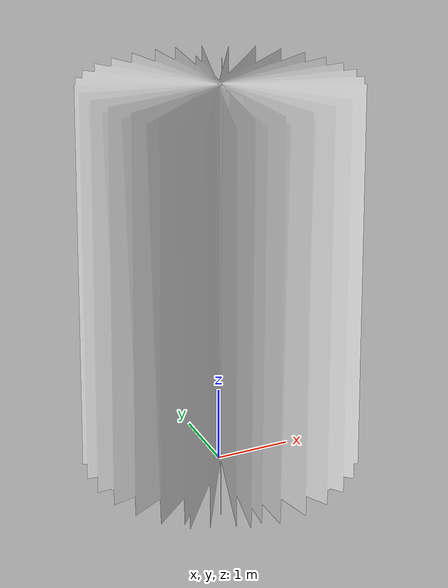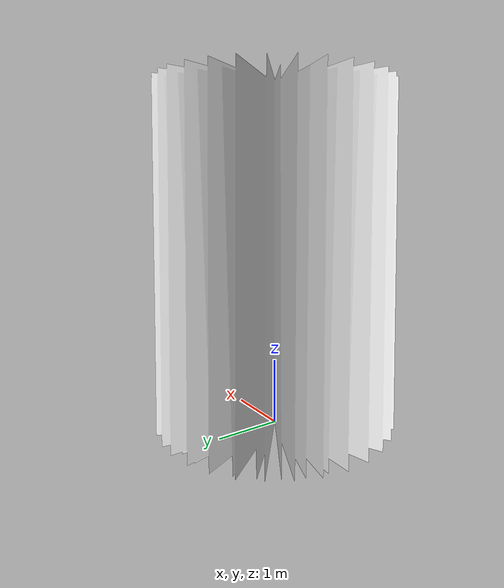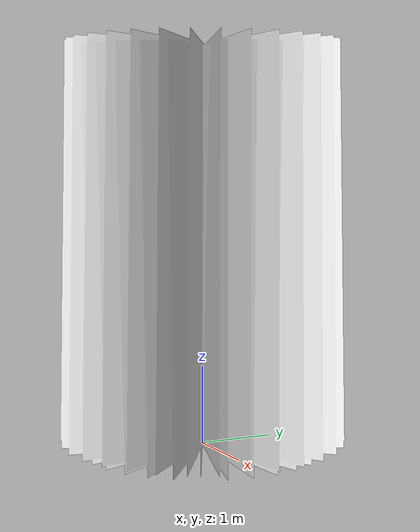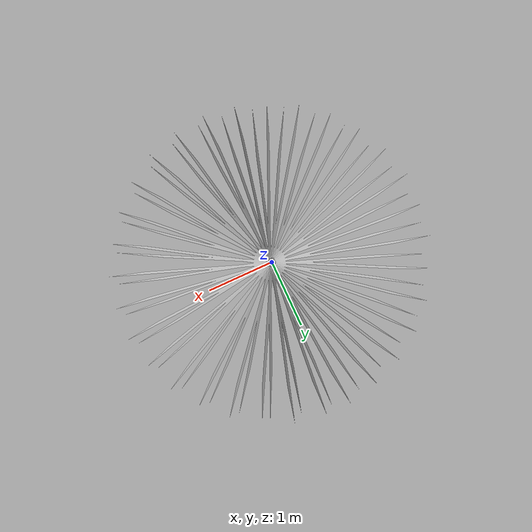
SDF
<?xml version='1.0'?>
<sdf version='1.6'>
  <model name='apple_tree'>
    <link name='link'>
      <self_collide>0</self_collide>
      <enable_wind>0</enable_wind>
      <kinematic>0</kinematic>
      <pose frame=''>0 0 0 0 -0 0</pose>
      <gravity>1</gravity>
      <inertial>
        <mass>1</mass>
        <pose frame=''>0 0 0 0 -0 0</pose>
        <inertia>
          <ixx>1</ixx>
          <ixy>0</ixy>
          <ixz>0</ixz>
          <iyy>1</iyy>
          <iyz>0</iyz>
          <izz>1</izz>
        </inertia>
      </inertial>
      <visual name='visual'>
        <geometry>
          <mesh>
            <uri>model://apple_tree/meshes/tree.dae</uri>
            <scale>1.7 1.7 1.7</scale>
          </mesh>
        </geometry>
        <transparency>1e-05</transparency>
        <material>
          <script>
            <uri>model://apple_tree/materials/scripts</uri>
            <uri>model://apple_tree/materials/textures</uri>
            <name>Apple_tree/Diffuse</name>
          </script>
          <shader type='pixel'>
            <normal_map>__default__</normal_map>
          </shader>
          <ambient>1 1 1 1</ambient>
          <diffuse>1 1 1 1</diffuse>
          <specular>0 0 0 1</specular>
          <emissive>0 0 0 1</emissive>
        </material>
        <pose frame=''>0 0 0 0 -0 0</pose>
        <cast_shadows>1</cast_shadows>
      </visual>
      <collision name='collision'>
        <laser_retro>0</laser_retro>
        <max_contacts>10</max_contacts>
        <pose frame=''>0 0 0 0 -0 0</pose>
        <geometry>
          <mesh>
            <uri>/home/tahsincan/hector_ws/src/hector_moveit/Media/models/apple_tree/meshes/tree.dae</uri>
            <scale>0.9 0.9 1.4</scale>
          </mesh>
        </geometry>
        <surface>
          <friction>
            <ode>
              <mu>1</mu>
              <mu2>1</mu2>
              <fdir1>0 0 0</fdir1>
              <slip1>0</slip1>
              <slip2>0</slip2>
            </ode>
            <torsional>
              <coefficient>1</coefficient>
              <patch_radius>0</patch_radius>
              <surface_radius>0</surface_radius>
              <use_patch_radius>1</use_patch_radius>
              <ode>
                <slip>0</slip>
              </ode>
            </torsional>
          </friction>
          <bounce>
            <restitution_coefficient>0</restitution_coefficient>
            <threshold>1e+06</threshold>
          </bounce>
          <contact>
            <collide_without_contact>0</collide_without_contact>
            <collide_without_contact_bitmask>1</collide_without_contact_bitmask>
            <collide_bitmask>1</collide_bitmask>
            <ode>
              <soft_cfm>0</soft_cfm>
              <soft_erp>0.2</soft_erp>
              <kp>1e+13</kp>
              <kd>1</kd>
              <max_vel>0.01</max_vel>
              <min_depth>0</min_depth>
            </ode>
            <bullet>
              <split_impulse>1</split_impulse>
              <split_impulse_penetration_threshold>-0.01</split_impulse_penetration_threshold>
              <soft_cfm>0</soft_cfm>
              <soft_erp>0.2</soft_erp>
              <kp>1e+13</kp>
              <kd>1</kd>
            </bullet>
          </contact>
        </surface>
      </collision>
    </link>
    <static>1</static>
    <allow_auto_disable>1</allow_auto_disable>
  </model>
</sdf>
